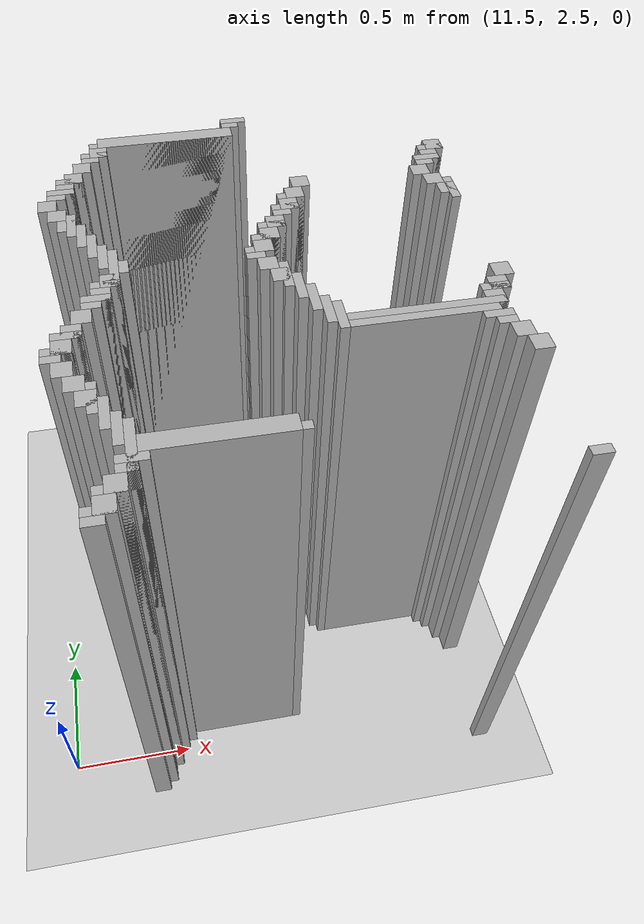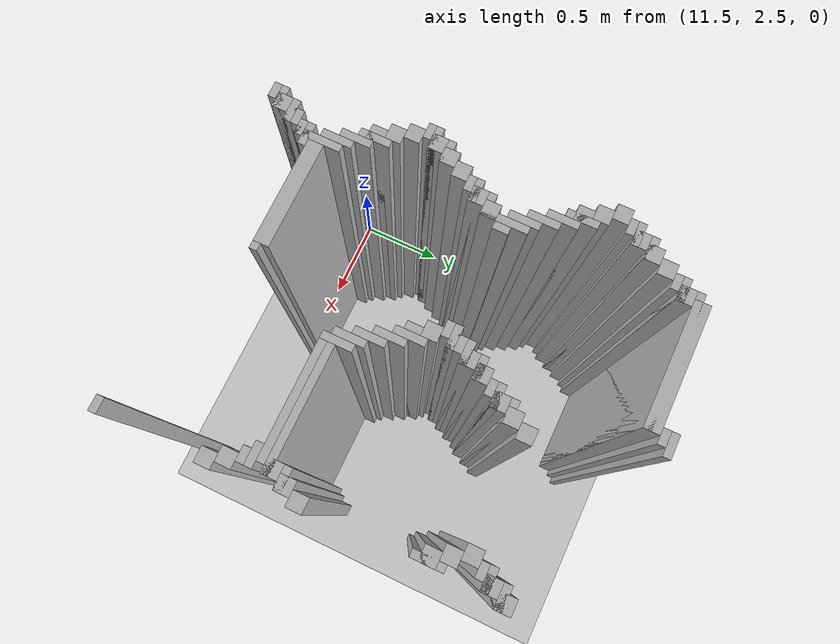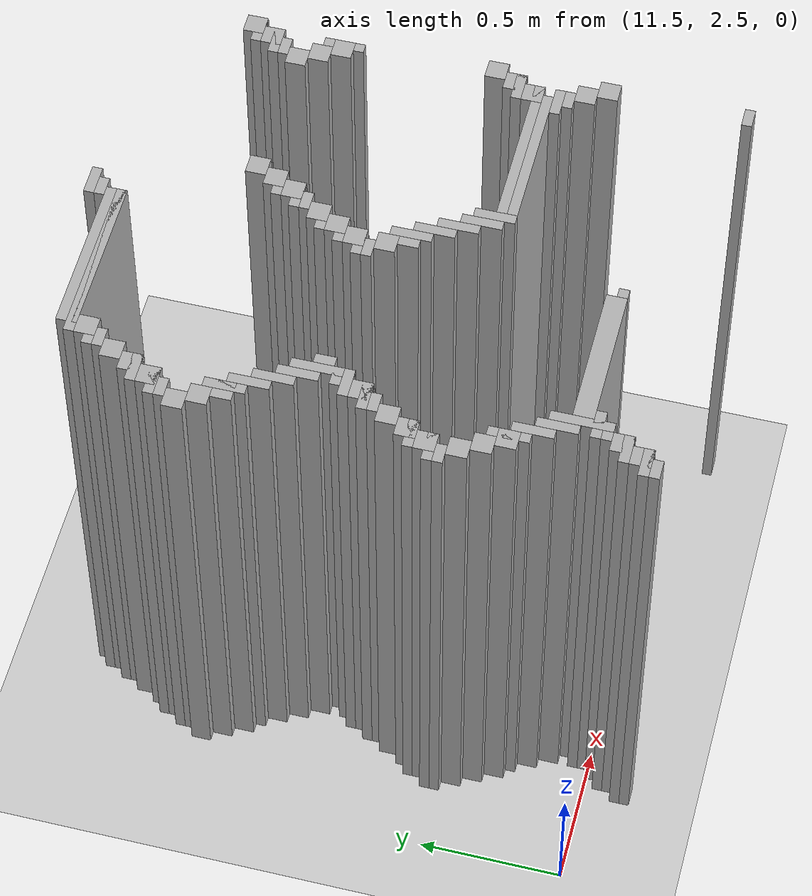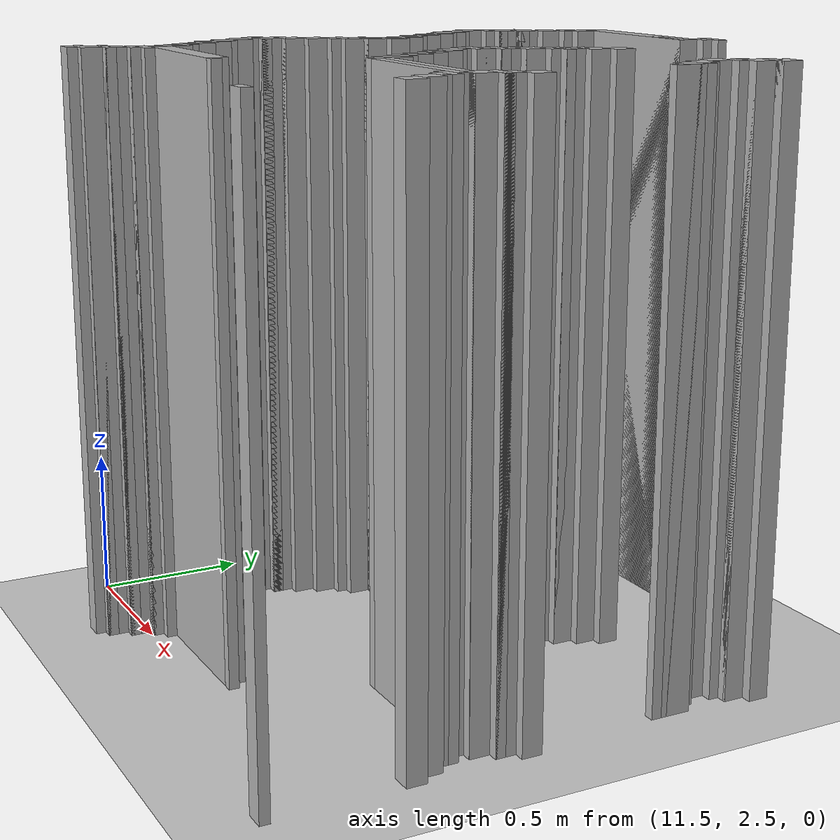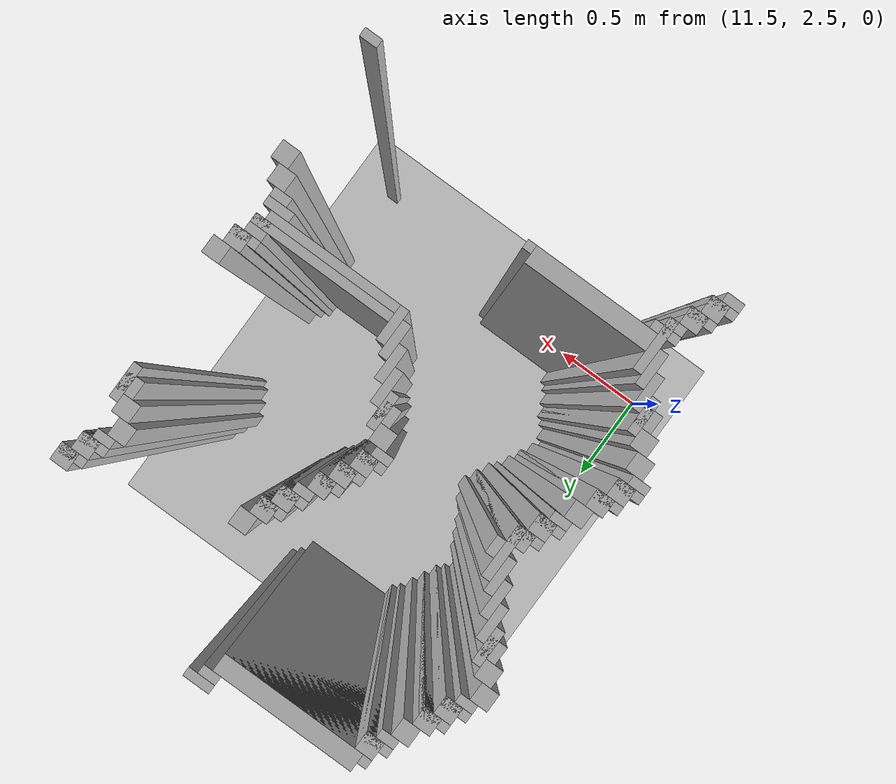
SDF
<sdf version="1.6">
 <world name="slam_world">
  <model name="ground_plane">
   <static>true</static>
   <link name="link">
    <collision name="collision">
     <geometry><plane><normal>0 0 1</normal><size>100 100</size></plane></geometry>
    </collision>
    <visual name="visual">
     <geometry><plane><normal>0 0 1</normal><size>100 100</size></plane></geometry>
     <material>
      <ambient>0.8 0.8 0.8 1</ambient>
      <diffuse>0.8 0.8 0.8 1</diffuse>
      <specular>0.8 0.8 0.8 1</specular>
     </material>
    </visual>
   </link>
  </model>
  <model name="wall_4326">
   <static>true</static>
   <pose>12.546403712296984 4.367749419953596 1.0 0 0 0</pose>
   <link name="link">
    <collision name="collision">
     <geometry><box><size>0.10440835266821345 0.03480278422273782 2.0</size></box></geometry>
    </collision>
    <visual name="visual">
     <geometry><box><size>0.10440835266821345 0.03480278422273782 2.0</size></box></geometry>
     <material><ambient>0.5 0.5 0.5 1</ambient><diffuse>0.7 0.7 0.7 1</diffuse></material>
    </visual>
   </link>
  </model>
  <model name="wall_4332">
   <static>true</static>
   <pose>12.529002320185615 4.332946635730858 1.0 0 0 0</pose>
   <link name="link">
    <collision name="collision">
     <geometry><box><size>0.06960556844547564 0.03480278422273782 2.0</size></box></geometry>
    </collision>
    <visual name="visual">
     <geometry><box><size>0.06960556844547564 0.03480278422273782 2.0</size></box></geometry>
     <material><ambient>0.5 0.5 0.5 1</ambient><diffuse>0.7 0.7 0.7 1</diffuse></material>
    </visual>
   </link>
  </model>
  <model name="wall_4342">
   <static>true</static>
   <pose>12.250580046403712 4.280742459396752 1.0 0 0 0</pose>
   <link name="link">
    <collision name="collision">
     <geometry><box><size>0.5568445475638051 0.06960556844547564 2.0</size></box></geometry>
    </collision>
    <visual name="visual">
     <geometry><box><size>0.5568445475638051 0.06960556844547564 2.0</size></box></geometry>
     <material><ambient>0.5 0.5 0.5 1</ambient><diffuse>0.7 0.7 0.7 1</diffuse></material>
    </visual>
   </link>
  </model>
  <model name="wall_4354">
   <static>true</static>
   <pose>12.233178654292344 4.263341067285383 1.0 0 0 0</pose>
   <link name="link">
    <collision name="collision">
     <geometry><box><size>0.5916473317865429 0.03480278422273782 2.0</size></box></geometry>
    </collision>
    <visual name="visual">
     <geometry><box><size>0.5916473317865429 0.03480278422273782 2.0</size></box></geometry>
     <material><ambient>0.5 0.5 0.5 1</ambient><diffuse>0.7 0.7 0.7 1</diffuse></material>
    </visual>
   </link>
  </model>
  <model name="wall_4369">
   <static>true</static>
   <pose>11.97215777262181 4.211136890951276 1.0 0 0 0</pose>
   <link name="link">
    <collision name="collision">
     <geometry><box><size>0.06960556844547564 0.06960556844547564 2.0</size></box></geometry>
    </collision>
    <visual name="visual">
     <geometry><box><size>0.06960556844547564 0.06960556844547564 2.0</size></box></geometry>
     <material><ambient>0.5 0.5 0.5 1</ambient><diffuse>0.7 0.7 0.7 1</diffuse></material>
    </visual>
   </link>
  </model>
  <model name="wall_4385">
   <static>true</static>
   <pose>11.95475638051044 4.193735498839907 1.0 0 0 0</pose>
   <link name="link">
    <collision name="collision">
     <geometry><box><size>0.10440835266821345 0.03480278422273782 2.0</size></box></geometry>
    </collision>
    <visual name="visual">
     <geometry><box><size>0.10440835266821345 0.03480278422273782 2.0</size></box></geometry>
     <material><ambient>0.5 0.5 0.5 1</ambient><diffuse>0.7 0.7 0.7 1</diffuse></material>
    </visual>
   </link>
  </model>
  <model name="wall_4398">
   <static>true</static>
   <pose>11.937354988399072 4.158932714617169 1.0 0 0 0</pose>
   <link name="link">
    <collision name="collision">
     <geometry><box><size>0.06960556844547564 0.03480278422273782 2.0</size></box></geometry>
    </collision>
    <visual name="visual">
     <geometry><box><size>0.06960556844547564 0.03480278422273782 2.0</size></box></geometry>
     <material><ambient>0.5 0.5 0.5 1</ambient><diffuse>0.7 0.7 0.7 1</diffuse></material>
    </visual>
   </link>
  </model>
  <model name="wall_4414">
   <static>true</static>
   <pose>11.902552204176333 4.106728538283062 1.0 0 0 0</pose>
   <link name="link">
    <collision name="collision">
     <geometry><box><size>0.06960556844547564 0.06960556844547564 2.0</size></box></geometry>
    </collision>
    <visual name="visual">
     <geometry><box><size>0.06960556844547564 0.06960556844547564 2.0</size></box></geometry>
     <material><ambient>0.5 0.5 0.5 1</ambient><diffuse>0.7 0.7 0.7 1</diffuse></material>
    </visual>
   </link>
  </model>
  <model name="wall_4430">
   <static>true</static>
   <pose>11.867749419953595 4.037122969837587 1.0 0 0 0</pose>
   <link name="link">
    <collision name="collision">
     <geometry><box><size>0.06960556844547564 0.06960556844547564 2.0</size></box></geometry>
    </collision>
    <visual name="visual">
     <geometry><box><size>0.06960556844547564 0.06960556844547564 2.0</size></box></geometry>
     <material><ambient>0.5 0.5 0.5 1</ambient><diffuse>0.7 0.7 0.7 1</diffuse></material>
    </visual>
   </link>
  </model>
  <model name="wall_4431">
   <static>true</static>
   <pose>13.329466357308585 4.037122969837587 1.0 0 0 0</pose>
   <link name="link">
    <collision name="collision">
     <geometry><box><size>0.06960556844547564 0.06960556844547564 2.0</size></box></geometry>
    </collision>
    <visual name="visual">
     <geometry><box><size>0.06960556844547564 0.06960556844547564 2.0</size></box></geometry>
     <material><ambient>0.5 0.5 0.5 1</ambient><diffuse>0.7 0.7 0.7 1</diffuse></material>
    </visual>
   </link>
  </model>
  <model name="wall_4446">
   <static>true</static>
   <pose>11.850348027842227 4.019721577726218 1.0 0 0 0</pose>
   <link name="link">
    <collision name="collision">
     <geometry><box><size>0.10440835266821345 0.03480278422273782 2.0</size></box></geometry>
    </collision>
    <visual name="visual">
     <geometry><box><size>0.10440835266821345 0.03480278422273782 2.0</size></box></geometry>
     <material><ambient>0.5 0.5 0.5 1</ambient><diffuse>0.7 0.7 0.7 1</diffuse></material>
    </visual>
   </link>
  </model>
  <model name="wall_4447">
   <static>true</static>
   <pose>13.312064965197216 4.019721577726218 1.0 0 0 0</pose>
   <link name="link">
    <collision name="collision">
     <geometry><box><size>0.10440835266821345 0.03480278422273782 2.0</size></box></geometry>
    </collision>
    <visual name="visual">
     <geometry><box><size>0.10440835266821345 0.03480278422273782 2.0</size></box></geometry>
     <material><ambient>0.5 0.5 0.5 1</ambient><diffuse>0.7 0.7 0.7 1</diffuse></material>
    </visual>
   </link>
  </model>
  <model name="wall_4456">
   <static>true</static>
   <pose>11.832946635730858 3.967517401392111 1.0 0 0 0</pose>
   <link name="link">
    <collision name="collision">
     <geometry><box><size>0.06960556844547564 0.06960556844547564 2.0</size></box></geometry>
    </collision>
    <visual name="visual">
     <geometry><box><size>0.06960556844547564 0.06960556844547564 2.0</size></box></geometry>
     <material><ambient>0.5 0.5 0.5 1</ambient><diffuse>0.7 0.7 0.7 1</diffuse></material>
    </visual>
   </link>
  </model>
  <model name="wall_4457">
   <static>true</static>
   <pose>13.294663573085847 3.967517401392111 1.0 0 0 0</pose>
   <link name="link">
    <collision name="collision">
     <geometry><box><size>0.06960556844547564 0.06960556844547564 2.0</size></box></geometry>
    </collision>
    <visual name="visual">
     <geometry><box><size>0.06960556844547564 0.06960556844547564 2.0</size></box></geometry>
     <material><ambient>0.5 0.5 0.5 1</ambient><diffuse>0.7 0.7 0.7 1</diffuse></material>
    </visual>
   </link>
  </model>
  <model name="wall_4471">
   <static>true</static>
   <pose>11.81554524361949 3.9501160092807424 1.0 0 0 0</pose>
   <link name="link">
    <collision name="collision">
     <geometry><box><size>0.10440835266821345 0.03480278422273782 2.0</size></box></geometry>
    </collision>
    <visual name="visual">
     <geometry><box><size>0.10440835266821345 0.03480278422273782 2.0</size></box></geometry>
     <material><ambient>0.5 0.5 0.5 1</ambient><diffuse>0.7 0.7 0.7 1</diffuse></material>
    </visual>
   </link>
  </model>
  <model name="wall_4472">
   <static>true</static>
   <pose>13.277262180974477 3.9501160092807424 1.0 0 0 0</pose>
   <link name="link">
    <collision name="collision">
     <geometry><box><size>0.10440835266821345 0.03480278422273782 2.0</size></box></geometry>
    </collision>
    <visual name="visual">
     <geometry><box><size>0.10440835266821345 0.03480278422273782 2.0</size></box></geometry>
     <material><ambient>0.5 0.5 0.5 1</ambient><diffuse>0.7 0.7 0.7 1</diffuse></material>
    </visual>
   </link>
  </model>
  <model name="wall_4481">
   <static>true</static>
   <pose>11.79814385150812 3.9153132250580045 1.0 0 0 0</pose>
   <link name="link">
    <collision name="collision">
     <geometry><box><size>0.06960556844547564 0.03480278422273782 2.0</size></box></geometry>
    </collision>
    <visual name="visual">
     <geometry><box><size>0.06960556844547564 0.03480278422273782 2.0</size></box></geometry>
     <material><ambient>0.5 0.5 0.5 1</ambient><diffuse>0.7 0.7 0.7 1</diffuse></material>
    </visual>
   </link>
  </model>
  <model name="wall_4482">
   <static>true</static>
   <pose>13.259860788863108 3.9153132250580045 1.0 0 0 0</pose>
   <link name="link">
    <collision name="collision">
     <geometry><box><size>0.06960556844547564 0.03480278422273782 2.0</size></box></geometry>
    </collision>
    <visual name="visual">
     <geometry><box><size>0.06960556844547564 0.03480278422273782 2.0</size></box></geometry>
     <material><ambient>0.5 0.5 0.5 1</ambient><diffuse>0.7 0.7 0.7 1</diffuse></material>
    </visual>
   </link>
  </model>
  <model name="wall_4495">
   <static>true</static>
   <pose>11.763341067285383 3.863109048723898 1.0 0 0 0</pose>
   <link name="link">
    <collision name="collision">
     <geometry><box><size>0.06960556844547564 0.06960556844547564 2.0</size></box></geometry>
    </collision>
    <visual name="visual">
     <geometry><box><size>0.06960556844547564 0.06960556844547564 2.0</size></box></geometry>
     <material><ambient>0.5 0.5 0.5 1</ambient><diffuse>0.7 0.7 0.7 1</diffuse></material>
    </visual>
   </link>
  </model>
  <model name="wall_4496">
   <static>true</static>
   <pose>12.737819025522041 3.863109048723898 1.0 0 0 0</pose>
   <link name="link">
    <collision name="collision">
     <geometry><box><size>0.06960556844547564 0.06960556844547564 2.0</size></box></geometry>
    </collision>
    <visual name="visual">
     <geometry><box><size>0.06960556844547564 0.06960556844547564 2.0</size></box></geometry>
     <material><ambient>0.5 0.5 0.5 1</ambient><diffuse>0.7 0.7 0.7 1</diffuse></material>
    </visual>
   </link>
  </model>
  <model name="wall_4497">
   <static>true</static>
   <pose>13.22505800464037 3.863109048723898 1.0 0 0 0</pose>
   <link name="link">
    <collision name="collision">
     <geometry><box><size>0.06960556844547564 0.06960556844547564 2.0</size></box></geometry>
    </collision>
    <visual name="visual">
     <geometry><box><size>0.06960556844547564 0.06960556844547564 2.0</size></box></geometry>
     <material><ambient>0.5 0.5 0.5 1</ambient><diffuse>0.7 0.7 0.7 1</diffuse></material>
    </visual>
   </link>
  </model>
  <model name="wall_4507">
   <static>true</static>
   <pose>11.79814385150812 3.793503480278422 1.0 0 0 0</pose>
   <link name="link">
    <collision name="collision">
     <geometry><box><size>0.06960556844547564 0.06960556844547564 2.0</size></box></geometry>
    </collision>
    <visual name="visual">
     <geometry><box><size>0.06960556844547564 0.06960556844547564 2.0</size></box></geometry>
     <material><ambient>0.5 0.5 0.5 1</ambient><diffuse>0.7 0.7 0.7 1</diffuse></material>
    </visual>
   </link>
  </model>
  <model name="wall_4508">
   <static>true</static>
   <pose>12.703016241299304 3.793503480278422 1.0 0 0 0</pose>
   <link name="link">
    <collision name="collision">
     <geometry><box><size>0.06960556844547564 0.06960556844547564 2.0</size></box></geometry>
    </collision>
    <visual name="visual">
     <geometry><box><size>0.06960556844547564 0.06960556844547564 2.0</size></box></geometry>
     <material><ambient>0.5 0.5 0.5 1</ambient><diffuse>0.7 0.7 0.7 1</diffuse></material>
    </visual>
   </link>
  </model>
  <model name="wall_4509">
   <static>true</static>
   <pose>13.259860788863108 3.793503480278422 1.0 0 0 0</pose>
   <link name="link">
    <collision name="collision">
     <geometry><box><size>0.06960556844547564 0.06960556844547564 2.0</size></box></geometry>
    </collision>
    <visual name="visual">
     <geometry><box><size>0.06960556844547564 0.06960556844547564 2.0</size></box></geometry>
     <material><ambient>0.5 0.5 0.5 1</ambient><diffuse>0.7 0.7 0.7 1</diffuse></material>
    </visual>
   </link>
  </model>
  <model name="wall_4518">
   <static>true</static>
   <pose>11.850348027842227 3.7238979118329465 1.0 0 0 0</pose>
   <link name="link">
    <collision name="collision">
     <geometry><box><size>0.03480278422273782 0.13921113689095127 2.0</size></box></geometry>
    </collision>
    <visual name="visual">
     <geometry><box><size>0.03480278422273782 0.13921113689095127 2.0</size></box></geometry>
     <material><ambient>0.5 0.5 0.5 1</ambient><diffuse>0.7 0.7 0.7 1</diffuse></material>
    </visual>
   </link>
  </model>
  <model name="wall_4519">
   <static>true</static>
   <pose>12.685614849187935 3.776102088167053 1.0 0 0 0</pose>
   <link name="link">
    <collision name="collision">
     <geometry><box><size>0.10440835266821345 0.03480278422273782 2.0</size></box></geometry>
    </collision>
    <visual name="visual">
     <geometry><box><size>0.10440835266821345 0.03480278422273782 2.0</size></box></geometry>
     <material><ambient>0.5 0.5 0.5 1</ambient><diffuse>0.7 0.7 0.7 1</diffuse></material>
    </visual>
   </link>
  </model>
  <model name="wall_4520">
   <static>true</static>
   <pose>13.312064965197216 3.7238979118329465 1.0 0 0 0</pose>
   <link name="link">
    <collision name="collision">
     <geometry><box><size>0.03480278422273782 0.13921113689095127 2.0</size></box></geometry>
    </collision>
    <visual name="visual">
     <geometry><box><size>0.03480278422273782 0.13921113689095127 2.0</size></box></geometry>
     <material><ambient>0.5 0.5 0.5 1</ambient><diffuse>0.7 0.7 0.7 1</diffuse></material>
    </visual>
   </link>
  </model>
  <model name="wall_4529">
   <static>true</static>
   <pose>11.832946635730858 3.7238979118329465 1.0 0 0 0</pose>
   <link name="link">
    <collision name="collision">
     <geometry><box><size>0.06960556844547564 0.06960556844547564 2.0</size></box></geometry>
    </collision>
    <visual name="visual">
     <geometry><box><size>0.06960556844547564 0.06960556844547564 2.0</size></box></geometry>
     <material><ambient>0.5 0.5 0.5 1</ambient><diffuse>0.7 0.7 0.7 1</diffuse></material>
    </visual>
   </link>
  </model>
  <model name="wall_4530">
   <static>true</static>
   <pose>12.668213457076565 3.7238979118329465 1.0 0 0 0</pose>
   <link name="link">
    <collision name="collision">
     <geometry><box><size>0.06960556844547564 0.06960556844547564 2.0</size></box></geometry>
    </collision>
    <visual name="visual">
     <geometry><box><size>0.06960556844547564 0.06960556844547564 2.0</size></box></geometry>
     <material><ambient>0.5 0.5 0.5 1</ambient><diffuse>0.7 0.7 0.7 1</diffuse></material>
    </visual>
   </link>
  </model>
  <model name="wall_4531">
   <static>true</static>
   <pose>13.294663573085847 3.7238979118329465 1.0 0 0 0</pose>
   <link name="link">
    <collision name="collision">
     <geometry><box><size>0.06960556844547564 0.06960556844547564 2.0</size></box></geometry>
    </collision>
    <visual name="visual">
     <geometry><box><size>0.06960556844547564 0.06960556844547564 2.0</size></box></geometry>
     <material><ambient>0.5 0.5 0.5 1</ambient><diffuse>0.7 0.7 0.7 1</diffuse></material>
    </visual>
   </link>
  </model>
  <model name="wall_4540">
   <static>true</static>
   <pose>11.885150812064964 3.6542923433874708 1.0 0 0 0</pose>
   <link name="link">
    <collision name="collision">
     <geometry><box><size>0.03480278422273782 0.13921113689095127 2.0</size></box></geometry>
    </collision>
    <visual name="visual">
     <geometry><box><size>0.03480278422273782 0.13921113689095127 2.0</size></box></geometry>
     <material><ambient>0.5 0.5 0.5 1</ambient><diffuse>0.7 0.7 0.7 1</diffuse></material>
    </visual>
   </link>
  </model>
  <model name="wall_4541">
   <static>true</static>
   <pose>12.650812064965196 3.706496519721578 1.0 0 0 0</pose>
   <link name="link">
    <collision name="collision">
     <geometry><box><size>0.10440835266821345 0.03480278422273782 2.0</size></box></geometry>
    </collision>
    <visual name="visual">
     <geometry><box><size>0.10440835266821345 0.03480278422273782 2.0</size></box></geometry>
     <material><ambient>0.5 0.5 0.5 1</ambient><diffuse>0.7 0.7 0.7 1</diffuse></material>
    </visual>
   </link>
  </model>
  <model name="wall_4547">
   <static>true</static>
   <pose>12.633410672853827 3.67169373549884 1.0 0 0 0</pose>
   <link name="link">
    <collision name="collision">
     <geometry><box><size>0.06960556844547564 0.03480278422273782 2.0</size></box></geometry>
    </collision>
    <visual name="visual">
     <geometry><box><size>0.06960556844547564 0.03480278422273782 2.0</size></box></geometry>
     <material><ambient>0.5 0.5 0.5 1</ambient><diffuse>0.7 0.7 0.7 1</diffuse></material>
    </visual>
   </link>
  </model>
  <model name="wall_4555">
   <static>true</static>
   <pose>11.919953596287703 3.584686774941995 1.0 0 0 0</pose>
   <link name="link">
    <collision name="collision">
     <geometry><box><size>0.03480278422273782 0.13921113689095127 2.0</size></box></geometry>
    </collision>
    <visual name="visual">
     <geometry><box><size>0.03480278422273782 0.13921113689095127 2.0</size></box></geometry>
     <material><ambient>0.5 0.5 0.5 1</ambient><diffuse>0.7 0.7 0.7 1</diffuse></material>
    </visual>
   </link>
  </model>
  <model name="wall_4556">
   <static>true</static>
   <pose>12.59860788863109 3.619489559164733 1.0 0 0 0</pose>
   <link name="link">
    <collision name="collision">
     <geometry><box><size>0.06960556844547564 0.06960556844547564 2.0</size></box></geometry>
    </collision>
    <visual name="visual">
     <geometry><box><size>0.06960556844547564 0.06960556844547564 2.0</size></box></geometry>
     <material><ambient>0.5 0.5 0.5 1</ambient><diffuse>0.7 0.7 0.7 1</diffuse></material>
    </visual>
   </link>
  </model>
  <model name="wall_4562">
   <static>true</static>
   <pose>12.581206496519721 3.602088167053364 1.0 0 0 0</pose>
   <link name="link">
    <collision name="collision">
     <geometry><box><size>0.10440835266821345 0.03480278422273782 2.0</size></box></geometry>
    </collision>
    <visual name="visual">
     <geometry><box><size>0.10440835266821345 0.03480278422273782 2.0</size></box></geometry>
     <material><ambient>0.5 0.5 0.5 1</ambient><diffuse>0.7 0.7 0.7 1</diffuse></material>
    </visual>
   </link>
  </model>
  <model name="wall_4570">
   <static>true</static>
   <pose>11.95475638051044 3.51508120649652 1.0 0 0 0</pose>
   <link name="link">
    <collision name="collision">
     <geometry><box><size>0.03480278422273782 0.13921113689095127 2.0</size></box></geometry>
    </collision>
    <visual name="visual">
     <geometry><box><size>0.03480278422273782 0.13921113689095127 2.0</size></box></geometry>
     <material><ambient>0.5 0.5 0.5 1</ambient><diffuse>0.7 0.7 0.7 1</diffuse></material>
    </visual>
   </link>
  </model>
  <model name="wall_4571">
   <static>true</static>
   <pose>12.563805104408353 3.549883990719257 1.0 0 0 0</pose>
   <link name="link">
    <collision name="collision">
     <geometry><box><size>0.06960556844547564 0.06960556844547564 2.0</size></box></geometry>
    </collision>
    <visual name="visual">
     <geometry><box><size>0.06960556844547564 0.06960556844547564 2.0</size></box></geometry>
     <material><ambient>0.5 0.5 0.5 1</ambient><diffuse>0.7 0.7 0.7 1</diffuse></material>
    </visual>
   </link>
  </model>
  <model name="wall_4581">
   <static>true</static>
   <pose>11.989559164733178 3.445475638051044 1.0 0 0 0</pose>
   <link name="link">
    <collision name="collision">
     <geometry><box><size>0.03480278422273782 0.2088167053364269 2.0</size></box></geometry>
    </collision>
    <visual name="visual">
     <geometry><box><size>0.03480278422273782 0.2088167053364269 2.0</size></box></geometry>
     <material><ambient>0.5 0.5 0.5 1</ambient><diffuse>0.7 0.7 0.7 1</diffuse></material>
    </visual>
   </link>
  </model>
  <model name="wall_4582">
   <static>true</static>
   <pose>12.546403712296984 3.5324825986078885 1.0 0 0 0</pose>
   <link name="link">
    <collision name="collision">
     <geometry><box><size>0.10440835266821345 0.03480278422273782 2.0</size></box></geometry>
    </collision>
    <visual name="visual">
     <geometry><box><size>0.10440835266821345 0.03480278422273782 2.0</size></box></geometry>
     <material><ambient>0.5 0.5 0.5 1</ambient><diffuse>0.7 0.7 0.7 1</diffuse></material>
    </visual>
   </link>
  </model>
  <model name="wall_4588">
   <static>true</static>
   <pose>12.529002320185615 3.480278422273782 1.0 0 0 0</pose>
   <link name="link">
    <collision name="collision">
     <geometry><box><size>0.06960556844547564 0.06960556844547564 2.0</size></box></geometry>
    </collision>
    <visual name="visual">
     <geometry><box><size>0.06960556844547564 0.06960556844547564 2.0</size></box></geometry>
     <material><ambient>0.5 0.5 0.5 1</ambient><diffuse>0.7 0.7 0.7 1</diffuse></material>
    </visual>
   </link>
  </model>
  <model name="wall_4600">
   <static>true</static>
   <pose>12.024361948955915 3.445475638051044 1.0 0 0 0</pose>
   <link name="link">
    <collision name="collision">
     <geometry><box><size>0.03480278422273782 0.06960556844547564 2.0</size></box></geometry>
    </collision>
    <visual name="visual">
     <geometry><box><size>0.03480278422273782 0.06960556844547564 2.0</size></box></geometry>
     <material><ambient>0.5 0.5 0.5 1</ambient><diffuse>0.7 0.7 0.7 1</diffuse></material>
    </visual>
   </link>
  </model>
  <model name="wall_4601">
   <static>true</static>
   <pose>12.511600928074245 3.4628770301624128 1.0 0 0 0</pose>
   <link name="link">
    <collision name="collision">
     <geometry><box><size>0.10440835266821345 0.03480278422273782 2.0</size></box></geometry>
    </collision>
    <visual name="visual">
     <geometry><box><size>0.10440835266821345 0.03480278422273782 2.0</size></box></geometry>
     <material><ambient>0.5 0.5 0.5 1</ambient><diffuse>0.7 0.7 0.7 1</diffuse></material>
    </visual>
   </link>
  </model>
  <model name="wall_4607">
   <static>true</static>
   <pose>12.494199535962876 3.428074245939675 1.0 0 0 0</pose>
   <link name="link">
    <collision name="collision">
     <geometry><box><size>0.06960556844547564 0.03480278422273782 2.0</size></box></geometry>
    </collision>
    <visual name="visual">
     <geometry><box><size>0.06960556844547564 0.03480278422273782 2.0</size></box></geometry>
     <material><ambient>0.5 0.5 0.5 1</ambient><diffuse>0.7 0.7 0.7 1</diffuse></material>
    </visual>
   </link>
  </model>
  <model name="wall_4621">
   <static>true</static>
   <pose>11.97215777262181 3.3758700696055683 1.0 0 0 0</pose>
   <link name="link">
    <collision name="collision">
     <geometry><box><size>0.06960556844547564 0.06960556844547564 2.0</size></box></geometry>
    </collision>
    <visual name="visual">
     <geometry><box><size>0.06960556844547564 0.06960556844547564 2.0</size></box></geometry>
     <material><ambient>0.5 0.5 0.5 1</ambient><diffuse>0.7 0.7 0.7 1</diffuse></material>
    </visual>
   </link>
  </model>
  <model name="wall_4622">
   <static>true</static>
   <pose>12.529002320185615 3.3758700696055683 1.0 0 0 0</pose>
   <link name="link">
    <collision name="collision">
     <geometry><box><size>0.06960556844547564 0.06960556844547564 2.0</size></box></geometry>
    </collision>
    <visual name="visual">
     <geometry><box><size>0.06960556844547564 0.06960556844547564 2.0</size></box></geometry>
     <material><ambient>0.5 0.5 0.5 1</ambient><diffuse>0.7 0.7 0.7 1</diffuse></material>
    </visual>
   </link>
  </model>
  <model name="wall_4638">
   <static>true</static>
   <pose>11.95475638051044 3.358468677494199 1.0 0 0 0</pose>
   <link name="link">
    <collision name="collision">
     <geometry><box><size>0.10440835266821345 0.03480278422273782 2.0</size></box></geometry>
    </collision>
    <visual name="visual">
     <geometry><box><size>0.10440835266821345 0.03480278422273782 2.0</size></box></geometry>
     <material><ambient>0.5 0.5 0.5 1</ambient><diffuse>0.7 0.7 0.7 1</diffuse></material>
    </visual>
   </link>
  </model>
  <model name="wall_4639">
   <static>true</static>
   <pose>12.581206496519721 3.3062645011600926 1.0 0 0 0</pose>
   <link name="link">
    <collision name="collision">
     <geometry><box><size>0.03480278422273782 0.13921113689095127 2.0</size></box></geometry>
    </collision>
    <visual name="visual">
     <geometry><box><size>0.03480278422273782 0.13921113689095127 2.0</size></box></geometry>
     <material><ambient>0.5 0.5 0.5 1</ambient><diffuse>0.7 0.7 0.7 1</diffuse></material>
    </visual>
   </link>
  </model>
  <model name="wall_4655">
   <static>true</static>
   <pose>11.937354988399072 3.3062645011600926 1.0 0 0 0</pose>
   <link name="link">
    <collision name="collision">
     <geometry><box><size>0.06960556844547564 0.06960556844547564 2.0</size></box></geometry>
    </collision>
    <visual name="visual">
     <geometry><box><size>0.06960556844547564 0.06960556844547564 2.0</size></box></geometry>
     <material><ambient>0.5 0.5 0.5 1</ambient><diffuse>0.7 0.7 0.7 1</diffuse></material>
    </visual>
   </link>
  </model>
  <model name="wall_4656">
   <static>true</static>
   <pose>12.563805104408353 3.3062645011600926 1.0 0 0 0</pose>
   <link name="link">
    <collision name="collision">
     <geometry><box><size>0.06960556844547564 0.06960556844547564 2.0</size></box></geometry>
    </collision>
    <visual name="visual">
     <geometry><box><size>0.06960556844547564 0.06960556844547564 2.0</size></box></geometry>
     <material><ambient>0.5 0.5 0.5 1</ambient><diffuse>0.7 0.7 0.7 1</diffuse></material>
    </visual>
   </link>
  </model>
  <model name="wall_4672">
   <static>true</static>
   <pose>11.919953596287703 3.288863109048724 1.0 0 0 0</pose>
   <link name="link">
    <collision name="collision">
     <geometry><box><size>0.10440835266821345 0.03480278422273782 2.0</size></box></geometry>
    </collision>
    <visual name="visual">
     <geometry><box><size>0.10440835266821345 0.03480278422273782 2.0</size></box></geometry>
     <material><ambient>0.5 0.5 0.5 1</ambient><diffuse>0.7 0.7 0.7 1</diffuse></material>
    </visual>
   </link>
  </model>
  <model name="wall_4673">
   <static>true</static>
   <pose>12.616009280742459 3.236658932714617 1.0 0 0 0</pose>
   <link name="link">
    <collision name="collision">
     <geometry><box><size>0.03480278422273782 0.13921113689095127 2.0</size></box></geometry>
    </collision>
    <visual name="visual">
     <geometry><box><size>0.03480278422273782 0.13921113689095127 2.0</size></box></geometry>
     <material><ambient>0.5 0.5 0.5 1</ambient><diffuse>0.7 0.7 0.7 1</diffuse></material>
    </visual>
   </link>
  </model>
  <model name="wall_4681">
   <static>true</static>
   <pose>11.902552204176333 3.254060324825986 1.0 0 0 0</pose>
   <link name="link">
    <collision name="collision">
     <geometry><box><size>0.06960556844547564 0.03480278422273782 2.0</size></box></geometry>
    </collision>
    <visual name="visual">
     <geometry><box><size>0.06960556844547564 0.03480278422273782 2.0</size></box></geometry>
     <material><ambient>0.5 0.5 0.5 1</ambient><diffuse>0.7 0.7 0.7 1</diffuse></material>
    </visual>
   </link>
  </model>
  <model name="wall_4697">
   <static>true</static>
   <pose>11.867749419953595 3.201856148491879 1.0 0 0 0</pose>
   <link name="link">
    <collision name="collision">
     <geometry><box><size>0.06960556844547564 0.06960556844547564 2.0</size></box></geometry>
    </collision>
    <visual name="visual">
     <geometry><box><size>0.06960556844547564 0.06960556844547564 2.0</size></box></geometry>
     <material><ambient>0.5 0.5 0.5 1</ambient><diffuse>0.7 0.7 0.7 1</diffuse></material>
    </visual>
   </link>
  </model>
  <model name="wall_4698">
   <static>true</static>
   <pose>12.650812064965196 3.167053364269141 1.0 0 0 0</pose>
   <link name="link">
    <collision name="collision">
     <geometry><box><size>0.03480278422273782 0.13921113689095127 2.0</size></box></geometry>
    </collision>
    <visual name="visual">
     <geometry><box><size>0.03480278422273782 0.13921113689095127 2.0</size></box></geometry>
     <material><ambient>0.5 0.5 0.5 1</ambient><diffuse>0.7 0.7 0.7 1</diffuse></material>
    </visual>
   </link>
  </model>
  <model name="wall_4699">
   <static>true</static>
   <pose>13.329466357308585 3.201856148491879 1.0 0 0 0</pose>
   <link name="link">
    <collision name="collision">
     <geometry><box><size>0.06960556844547564 0.06960556844547564 2.0</size></box></geometry>
    </collision>
    <visual name="visual">
     <geometry><box><size>0.06960556844547564 0.06960556844547564 2.0</size></box></geometry>
     <material><ambient>0.5 0.5 0.5 1</ambient><diffuse>0.7 0.7 0.7 1</diffuse></material>
    </visual>
   </link>
  </model>
  <model name="wall_4714">
   <static>true</static>
   <pose>11.832946635730858 3.1322505800464038 1.0 0 0 0</pose>
   <link name="link">
    <collision name="collision">
     <geometry><box><size>0.06960556844547564 0.06960556844547564 2.0</size></box></geometry>
    </collision>
    <visual name="visual">
     <geometry><box><size>0.06960556844547564 0.06960556844547564 2.0</size></box></geometry>
     <material><ambient>0.5 0.5 0.5 1</ambient><diffuse>0.7 0.7 0.7 1</diffuse></material>
    </visual>
   </link>
  </model>
  <model name="wall_4715">
   <static>true</static>
   <pose>12.685614849187935 3.097447795823666 1.0 0 0 0</pose>
   <link name="link">
    <collision name="collision">
     <geometry><box><size>0.03480278422273782 0.13921113689095127 2.0</size></box></geometry>
    </collision>
    <visual name="visual">
     <geometry><box><size>0.03480278422273782 0.13921113689095127 2.0</size></box></geometry>
     <material><ambient>0.5 0.5 0.5 1</ambient><diffuse>0.7 0.7 0.7 1</diffuse></material>
    </visual>
   </link>
  </model>
  <model name="wall_4716">
   <static>true</static>
   <pose>13.294663573085847 3.1322505800464038 1.0 0 0 0</pose>
   <link name="link">
    <collision name="collision">
     <geometry><box><size>0.06960556844547564 0.06960556844547564 2.0</size></box></geometry>
    </collision>
    <visual name="visual">
     <geometry><box><size>0.06960556844547564 0.06960556844547564 2.0</size></box></geometry>
     <material><ambient>0.5 0.5 0.5 1</ambient><diffuse>0.7 0.7 0.7 1</diffuse></material>
    </visual>
   </link>
  </model>
  <model name="wall_4731">
   <static>true</static>
   <pose>11.81554524361949 3.1148491879350346 1.0 0 0 0</pose>
   <link name="link">
    <collision name="collision">
     <geometry><box><size>0.10440835266821345 0.03480278422273782 2.0</size></box></geometry>
    </collision>
    <visual name="visual">
     <geometry><box><size>0.10440835266821345 0.03480278422273782 2.0</size></box></geometry>
     <material><ambient>0.5 0.5 0.5 1</ambient><diffuse>0.7 0.7 0.7 1</diffuse></material>
    </visual>
   </link>
  </model>
  <model name="wall_4732">
   <static>true</static>
   <pose>12.720417633410673 3.062645011600928 1.0 0 0 0</pose>
   <link name="link">
    <collision name="collision">
     <geometry><box><size>0.03480278422273782 0.13921113689095127 2.0</size></box></geometry>
    </collision>
    <visual name="visual">
     <geometry><box><size>0.03480278422273782 0.13921113689095127 2.0</size></box></geometry>
     <material><ambient>0.5 0.5 0.5 1</ambient><diffuse>0.7 0.7 0.7 1</diffuse></material>
    </visual>
   </link>
  </model>
  <model name="wall_4733">
   <static>true</static>
   <pose>13.277262180974477 3.1148491879350346 1.0 0 0 0</pose>
   <link name="link">
    <collision name="collision">
     <geometry><box><size>0.10440835266821345 0.03480278422273782 2.0</size></box></geometry>
    </collision>
    <visual name="visual">
     <geometry><box><size>0.10440835266821345 0.03480278422273782 2.0</size></box></geometry>
     <material><ambient>0.5 0.5 0.5 1</ambient><diffuse>0.7 0.7 0.7 1</diffuse></material>
    </visual>
   </link>
  </model>
  <model name="wall_4740">
   <static>true</static>
   <pose>11.79814385150812 3.062645011600928 1.0 0 0 0</pose>
   <link name="link">
    <collision name="collision">
     <geometry><box><size>0.06960556844547564 0.06960556844547564 2.0</size></box></geometry>
    </collision>
    <visual name="visual">
     <geometry><box><size>0.06960556844547564 0.06960556844547564 2.0</size></box></geometry>
     <material><ambient>0.5 0.5 0.5 1</ambient><diffuse>0.7 0.7 0.7 1</diffuse></material>
    </visual>
   </link>
  </model>
  <model name="wall_4741">
   <static>true</static>
   <pose>13.259860788863108 3.062645011600928 1.0 0 0 0</pose>
   <link name="link">
    <collision name="collision">
     <geometry><box><size>0.06960556844547564 0.06960556844547564 2.0</size></box></geometry>
    </collision>
    <visual name="visual">
     <geometry><box><size>0.06960556844547564 0.06960556844547564 2.0</size></box></geometry>
     <material><ambient>0.5 0.5 0.5 1</ambient><diffuse>0.7 0.7 0.7 1</diffuse></material>
    </visual>
   </link>
  </model>
  <model name="wall_4753">
   <static>true</static>
   <pose>11.780742459396752 3.045243619489559 1.0 0 0 0</pose>
   <link name="link">
    <collision name="collision">
     <geometry><box><size>0.10440835266821345 0.03480278422273782 2.0</size></box></geometry>
    </collision>
    <visual name="visual">
     <geometry><box><size>0.10440835266821345 0.03480278422273782 2.0</size></box></geometry>
     <material><ambient>0.5 0.5 0.5 1</ambient><diffuse>0.7 0.7 0.7 1</diffuse></material>
    </visual>
   </link>
  </model>
  <model name="wall_4754">
   <static>true</static>
   <pose>13.016241299303944 3.045243619489559 1.0 0 0 0</pose>
   <link name="link">
    <collision name="collision">
     <geometry><box><size>0.5568445475638051 0.03480278422273782 2.0</size></box></geometry>
    </collision>
    <visual name="visual">
     <geometry><box><size>0.5568445475638051 0.03480278422273782 2.0</size></box></geometry>
     <material><ambient>0.5 0.5 0.5 1</ambient><diffuse>0.7 0.7 0.7 1</diffuse></material>
    </visual>
   </link>
  </model>
  <model name="wall_4761">
   <static>true</static>
   <pose>11.763341067285383 3.010440835266821 1.0 0 0 0</pose>
   <link name="link">
    <collision name="collision">
     <geometry><box><size>0.06960556844547564 0.03480278422273782 2.0</size></box></geometry>
    </collision>
    <visual name="visual">
     <geometry><box><size>0.06960556844547564 0.03480278422273782 2.0</size></box></geometry>
     <material><ambient>0.5 0.5 0.5 1</ambient><diffuse>0.7 0.7 0.7 1</diffuse></material>
    </visual>
   </link>
  </model>
  <model name="wall_4762">
   <static>true</static>
   <pose>12.998839907192576 3.010440835266821 1.0 0 0 0</pose>
   <link name="link">
    <collision name="collision">
     <geometry><box><size>0.5220417633410672 0.03480278422273782 2.0</size></box></geometry>
    </collision>
    <visual name="visual">
     <geometry><box><size>0.5220417633410672 0.03480278422273782 2.0</size></box></geometry>
     <material><ambient>0.5 0.5 0.5 1</ambient><diffuse>0.7 0.7 0.7 1</diffuse></material>
    </visual>
   </link>
  </model>
  <model name="wall_4774">
   <static>true</static>
   <pose>11.79814385150812 2.9582366589327145 1.0 0 0 0</pose>
   <link name="link">
    <collision name="collision">
     <geometry><box><size>0.06960556844547564 0.06960556844547564 2.0</size></box></geometry>
    </collision>
    <visual name="visual">
     <geometry><box><size>0.06960556844547564 0.06960556844547564 2.0</size></box></geometry>
     <material><ambient>0.5 0.5 0.5 1</ambient><diffuse>0.7 0.7 0.7 1</diffuse></material>
    </visual>
   </link>
  </model>
  <model name="wall_4775">
   <static>true</static>
   <pose>13.24245939675174 2.975638051044083 1.0 0 0 0</pose>
   <link name="link">
    <collision name="collision">
     <geometry><box><size>0.10440835266821345 0.03480278422273782 2.0</size></box></geometry>
    </collision>
    <visual name="visual">
     <geometry><box><size>0.10440835266821345 0.03480278422273782 2.0</size></box></geometry>
     <material><ambient>0.5 0.5 0.5 1</ambient><diffuse>0.7 0.7 0.7 1</diffuse></material>
    </visual>
   </link>
  </model>
  <model name="wall_4782">
   <static>true</static>
   <pose>13.259860788863108 2.9408352668213458 1.0 0 0 0</pose>
   <link name="link">
    <collision name="collision">
     <geometry><box><size>0.06960556844547564 0.03480278422273782 2.0</size></box></geometry>
    </collision>
    <visual name="visual">
     <geometry><box><size>0.06960556844547564 0.03480278422273782 2.0</size></box></geometry>
     <material><ambient>0.5 0.5 0.5 1</ambient><diffuse>0.7 0.7 0.7 1</diffuse></material>
    </visual>
   </link>
  </model>
  <model name="wall_4794">
   <static>true</static>
   <pose>11.832946635730858 2.8886310904872388 1.0 0 0 0</pose>
   <link name="link">
    <collision name="collision">
     <geometry><box><size>0.06960556844547564 0.06960556844547564 2.0</size></box></geometry>
    </collision>
    <visual name="visual">
     <geometry><box><size>0.06960556844547564 0.06960556844547564 2.0</size></box></geometry>
     <material><ambient>0.5 0.5 0.5 1</ambient><diffuse>0.7 0.7 0.7 1</diffuse></material>
    </visual>
   </link>
  </model>
  <model name="wall_4795">
   <static>true</static>
   <pose>13.294663573085847 2.8886310904872388 1.0 0 0 0</pose>
   <link name="link">
    <collision name="collision">
     <geometry><box><size>0.06960556844547564 0.06960556844547564 2.0</size></box></geometry>
    </collision>
    <visual name="visual">
     <geometry><box><size>0.06960556844547564 0.06960556844547564 2.0</size></box></geometry>
     <material><ambient>0.5 0.5 0.5 1</ambient><diffuse>0.7 0.7 0.7 1</diffuse></material>
    </visual>
   </link>
  </model>
  <model name="wall_4807">
   <static>true</static>
   <pose>11.885150812064964 2.819025522041763 1.0 0 0 0</pose>
   <link name="link">
    <collision name="collision">
     <geometry><box><size>0.03480278422273782 0.13921113689095127 2.0</size></box></geometry>
    </collision>
    <visual name="visual">
     <geometry><box><size>0.03480278422273782 0.13921113689095127 2.0</size></box></geometry>
     <material><ambient>0.5 0.5 0.5 1</ambient><diffuse>0.7 0.7 0.7 1</diffuse></material>
    </visual>
   </link>
  </model>
  <model name="wall_4820">
   <static>true</static>
   <pose>11.867749419953595 2.819025522041763 1.0 0 0 0</pose>
   <link name="link">
    <collision name="collision">
     <geometry><box><size>0.06960556844547564 0.06960556844547564 2.0</size></box></geometry>
    </collision>
    <visual name="visual">
     <geometry><box><size>0.06960556844547564 0.06960556844547564 2.0</size></box></geometry>
     <material><ambient>0.5 0.5 0.5 1</ambient><diffuse>0.7 0.7 0.7 1</diffuse></material>
    </visual>
   </link>
  </model>
  <model name="wall_4821">
   <static>true</static>
   <pose>13.329466357308585 2.819025522041763 1.0 0 0 0</pose>
   <link name="link">
    <collision name="collision">
     <geometry><box><size>0.06960556844547564 0.06960556844547564 2.0</size></box></geometry>
    </collision>
    <visual name="visual">
     <geometry><box><size>0.06960556844547564 0.06960556844547564 2.0</size></box></geometry>
     <material><ambient>0.5 0.5 0.5 1</ambient><diffuse>0.7 0.7 0.7 1</diffuse></material>
    </visual>
   </link>
  </model>
  <model name="wall_4833">
   <static>true</static>
   <pose>11.919953596287703 2.7494199535962878 1.0 0 0 0</pose>
   <link name="link">
    <collision name="collision">
     <geometry><box><size>0.03480278422273782 0.13921113689095127 2.0</size></box></geometry>
    </collision>
    <visual name="visual">
     <geometry><box><size>0.03480278422273782 0.13921113689095127 2.0</size></box></geometry>
     <material><ambient>0.5 0.5 0.5 1</ambient><diffuse>0.7 0.7 0.7 1</diffuse></material>
    </visual>
   </link>
  </model>
  <model name="wall_4850">
   <static>true</static>
   <pose>11.95475638051044 2.679814385150812 1.0 0 0 0</pose>
   <link name="link">
    <collision name="collision">
     <geometry><box><size>0.03480278422273782 0.13921113689095127 2.0</size></box></geometry>
    </collision>
    <visual name="visual">
     <geometry><box><size>0.03480278422273782 0.13921113689095127 2.0</size></box></geometry>
     <material><ambient>0.5 0.5 0.5 1</ambient><diffuse>0.7 0.7 0.7 1</diffuse></material>
    </visual>
   </link>
  </model>
  <model name="wall_4863">
   <static>true</static>
   <pose>11.989559164733178 2.6102088167053363 1.0 0 0 0</pose>
   <link name="link">
    <collision name="collision">
     <geometry><box><size>0.03480278422273782 0.2088167053364269 2.0</size></box></geometry>
    </collision>
    <visual name="visual">
     <geometry><box><size>0.03480278422273782 0.2088167053364269 2.0</size></box></geometry>
     <material><ambient>0.5 0.5 0.5 1</ambient><diffuse>0.7 0.7 0.7 1</diffuse></material>
    </visual>
   </link>
  </model>
  <model name="wall_4881">
   <static>true</static>
   <pose>12.250580046403712 2.6102088167053363 1.0 0 0 0</pose>
   <link name="link">
    <collision name="collision">
     <geometry><box><size>0.4872389791183295 0.06960556844547564 2.0</size></box></geometry>
    </collision>
    <visual name="visual">
     <geometry><box><size>0.4872389791183295 0.06960556844547564 2.0</size></box></geometry>
     <material><ambient>0.5 0.5 0.5 1</ambient><diffuse>0.7 0.7 0.7 1</diffuse></material>
    </visual>
   </link>
  </model>
  <model name="wall_4893">
   <static>true</static>
   <pose>12.511600928074245 2.5928074245939676 1.0 0 0 0</pose>
   <link name="link">
    <collision name="collision">
     <geometry><box><size>0.03480278422273782 0.03480278422273782 2.0</size></box></geometry>
    </collision>
    <visual name="visual">
     <geometry><box><size>0.03480278422273782 0.03480278422273782 2.0</size></box></geometry>
     <material><ambient>0.5 0.5 0.5 1</ambient><diffuse>0.7 0.7 0.7 1</diffuse></material>
    </visual>
   </link>
  </model>
  <model name="wall_4908">
   <static>true</static>
   <pose>11.989559164733178 2.5580046403712298 1.0 0 0 0</pose>
   <link name="link">
    <collision name="collision">
     <geometry><box><size>0.10440835266821345 0.03480278422273782 2.0</size></box></geometry>
    </collision>
    <visual name="visual">
     <geometry><box><size>0.10440835266821345 0.03480278422273782 2.0</size></box></geometry>
     <material><ambient>0.5 0.5 0.5 1</ambient><diffuse>0.7 0.7 0.7 1</diffuse></material>
    </visual>
   </link>
  </model>
  <model name="wall_4919">
   <static>true</static>
   <pose>11.97215777262181 2.523201856148492 1.0 0 0 0</pose>
   <link name="link">
    <collision name="collision">
     <geometry><box><size>0.06960556844547564 0.03480278422273782 2.0</size></box></geometry>
    </collision>
    <visual name="visual">
     <geometry><box><size>0.06960556844547564 0.03480278422273782 2.0</size></box></geometry>
     <material><ambient>0.5 0.5 0.5 1</ambient><diffuse>0.7 0.7 0.7 1</diffuse></material>
    </visual>
   </link>
  </model>
  <model name="wall_4935">
   <static>true</static>
   <pose>11.937354988399072 2.470997679814385 1.0 0 0 0</pose>
   <link name="link">
    <collision name="collision">
     <geometry><box><size>0.06960556844547564 0.06960556844547564 2.0</size></box></geometry>
    </collision>
    <visual name="visual">
     <geometry><box><size>0.06960556844547564 0.06960556844547564 2.0</size></box></geometry>
     <material><ambient>0.5 0.5 0.5 1</ambient><diffuse>0.7 0.7 0.7 1</diffuse></material>
    </visual>
   </link>
  </model>
  <model name="wall_4952">
   <static>true</static>
   <pose>11.919953596287703 2.453596287703016 1.0 0 0 0</pose>
   <link name="link">
    <collision name="collision">
     <geometry><box><size>0.10440835266821345 0.03480278422273782 2.0</size></box></geometry>
    </collision>
    <visual name="visual">
     <geometry><box><size>0.10440835266821345 0.03480278422273782 2.0</size></box></geometry>
     <material><ambient>0.5 0.5 0.5 1</ambient><diffuse>0.7 0.7 0.7 1</diffuse></material>
    </visual>
   </link>
  </model>
  <model name="wall_4967">
   <static>true</static>
   <pose>11.902552204176333 2.4013921113689096 1.0 0 0 0</pose>
   <link name="link">
    <collision name="collision">
     <geometry><box><size>0.06960556844547564 0.06960556844547564 2.0</size></box></geometry>
    </collision>
    <visual name="visual">
     <geometry><box><size>0.06960556844547564 0.06960556844547564 2.0</size></box></geometry>
     <material><ambient>0.5 0.5 0.5 1</ambient><diffuse>0.7 0.7 0.7 1</diffuse></material>
    </visual>
   </link>
  </model>
  <model name="wall_4983">
   <static>true</static>
   <pose>11.885150812064964 2.3839907192575405 1.0 0 0 0</pose>
   <link name="link">
    <collision name="collision">
     <geometry><box><size>0.10440835266821345 0.03480278422273782 2.0</size></box></geometry>
    </collision>
    <visual name="visual">
     <geometry><box><size>0.10440835266821345 0.03480278422273782 2.0</size></box></geometry>
     <material><ambient>0.5 0.5 0.5 1</ambient><diffuse>0.7 0.7 0.7 1</diffuse></material>
    </visual>
   </link>
  </model>
  <model name="wall_4993">
   <static>true</static>
   <pose>11.867749419953595 2.3491879350348026 1.0 0 0 0</pose>
   <link name="link">
    <collision name="collision">
     <geometry><box><size>0.06960556844547564 0.03480278422273782 2.0</size></box></geometry>
    </collision>
    <visual name="visual">
     <geometry><box><size>0.06960556844547564 0.03480278422273782 2.0</size></box></geometry>
     <material><ambient>0.5 0.5 0.5 1</ambient><diffuse>0.7 0.7 0.7 1</diffuse></material>
    </visual>
   </link>
  </model>
  <model name="wall_4994">
   <static>true</static>
   <pose>13.329466357308585 2.3491879350348026 1.0 0 0 0</pose>
   <link name="link">
    <collision name="collision">
     <geometry><box><size>0.06960556844547564 0.03480278422273782 2.0</size></box></geometry>
    </collision>
    <visual name="visual">
     <geometry><box><size>0.06960556844547564 0.03480278422273782 2.0</size></box></geometry>
     <material><ambient>0.5 0.5 0.5 1</ambient><diffuse>0.7 0.7 0.7 1</diffuse></material>
    </visual>
   </link>
  </model>
 </world>
</sdf>
